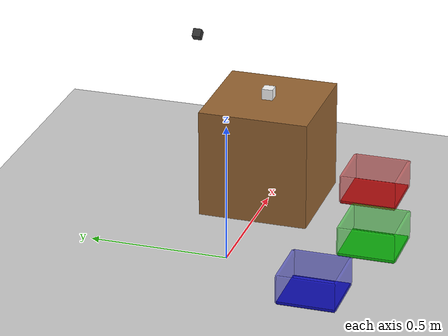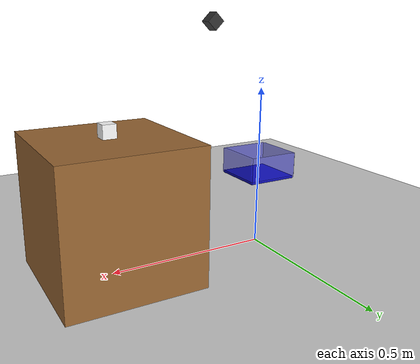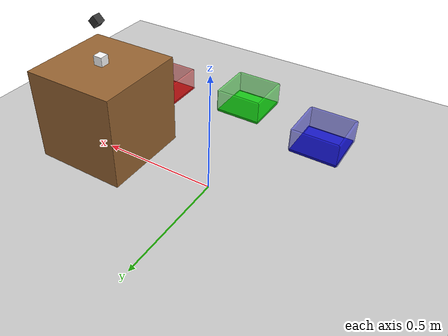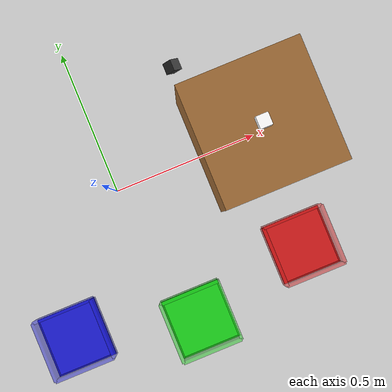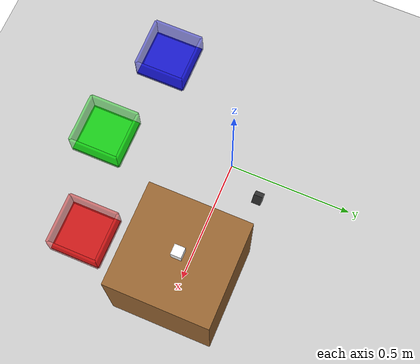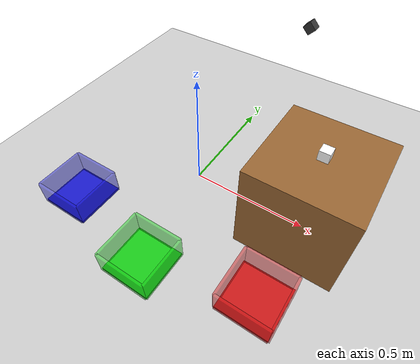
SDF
<?xml version="1.0" ?>
<sdf version="1.6">
  <world name="pick_place_world">

    <include>
      <uri>model://sun</uri>
    </include>

    <include>
      <uri>model://ground_plane</uri>
    </include>

    <!-- Pick table -->
    <model name="pick_table">
      <static>true</static>
      <pose>0.5 0.0 0.2 0 0 0</pose>
      <link name="link">
        <collision name="collision">
          <geometry><box><size>0.4 0.4 0.4</size></box></geometry>
        </collision>
        <visual name="visual">
          <geometry><box><size>0.4 0.4 0.4</size></box></geometry>
          <material>
            <ambient>0.6 0.4 0.2 1</ambient>
            <diffuse>0.6 0.4 0.2 1</diffuse>
          </material>
        </visual>
      </link>
    </model>

    <!-- Object to pick (small cube) -->
    <model name="pick_object">
      <pose>0.5 0.0 0.42 0 0 0</pose>
      <link name="link">
        <inertial>
          <mass>0.1</mass>
          <inertia>
            <ixx>0.00001</ixx><iyy>0.00001</iyy><izz>0.00001</izz>
            <ixy>0</ixy><ixz>0</ixz><iyz>0</iyz>
          </inertia>
        </inertial>
        <collision name="collision">
          <geometry><box><size>0.04 0.04 0.04</size></box></geometry>
        </collision>
        <visual name="visual">
          <geometry><box><size>0.04 0.04 0.04</size></box></geometry>
          <material>
            <ambient>1.0 1.0 1.0 1</ambient>
            <diffuse>1.0 1.0 1.0 1</diffuse>
          </material>
        </visual>
      </link>
    </model>

    <!-- Bin A (Red) -->
    <model name="bin_a">
      <static>true</static>
      <pose>0.5 -0.4 0.075 0 0 0</pose>
      <link name="link">
        <collision name="floor">
          <pose>0 0 0 0 0 0</pose>
          <geometry><box><size>0.2 0.2 0.01</size></box></geometry>
        </collision>
        <visual name="floor_vis">
          <pose>0 0 0 0 0 0</pose>
          <geometry><box><size>0.2 0.2 0.01</size></box></geometry>
          <material><ambient>0.8 0.1 0.1 1</ambient><diffuse>0.8 0.1 0.1 1</diffuse></material>
        </visual>
        <!-- Walls -->
        <visual name="wall1"><pose>0.1 0 0.05 0 0 0</pose>
          <geometry><box><size>0.01 0.2 0.1</size></box></geometry>
          <material><ambient>0.8 0.1 0.1 0.5</ambient><diffuse>0.8 0.1 0.1 0.5</diffuse></material>
        </visual>
        <visual name="wall2"><pose>-0.1 0 0.05 0 0 0</pose>
          <geometry><box><size>0.01 0.2 0.1</size></box></geometry>
          <material><ambient>0.8 0.1 0.1 0.5</ambient><diffuse>0.8 0.1 0.1 0.5</diffuse></material>
        </visual>
        <visual name="wall3"><pose>0 0.1 0.05 0 0 0</pose>
          <geometry><box><size>0.2 0.01 0.1</size></box></geometry>
          <material><ambient>0.8 0.1 0.1 0.5</ambient><diffuse>0.8 0.1 0.1 0.5</diffuse></material>
        </visual>
        <visual name="wall4"><pose>0 -0.1 0.05 0 0 0</pose>
          <geometry><box><size>0.2 0.01 0.1</size></box></geometry>
          <material><ambient>0.8 0.1 0.1 0.5</ambient><diffuse>0.8 0.1 0.1 0.5</diffuse></material>
        </visual>
        <!-- Label -->
        <visual name="label"><pose>0 0 0.001 0 0 0</pose>
          <geometry><box><size>0.05 0.05 0.001</size></box></geometry>
          <material><ambient>1 1 1 1</ambient><diffuse>1 1 1 1</diffuse></material>
        </visual>
      </link>
    </model>

    <!-- Bin B (Blue) -->
    <model name="bin_b">
      <static>true</static>
      <pose>-0.3 -0.4 0.075 0 0 0</pose>
      <link name="link">
        <collision name="floor">
          <geometry><box><size>0.2 0.2 0.01</size></box></geometry>
        </collision>
        <visual name="floor_vis">
          <geometry><box><size>0.2 0.2 0.01</size></box></geometry>
          <material><ambient>0.1 0.1 0.8 1</ambient><diffuse>0.1 0.1 0.8 1</diffuse></material>
        </visual>
        <visual name="wall1"><pose>0.1 0 0.05 0 0 0</pose>
          <geometry><box><size>0.01 0.2 0.1</size></box></geometry>
          <material><ambient>0.1 0.1 0.8 0.5</ambient><diffuse>0.1 0.1 0.8 0.5</diffuse></material>
        </visual>
        <visual name="wall2"><pose>-0.1 0 0.05 0 0 0</pose>
          <geometry><box><size>0.01 0.2 0.1</size></box></geometry>
          <material><ambient>0.1 0.1 0.8 0.5</ambient><diffuse>0.1 0.1 0.8 0.5</diffuse></material>
        </visual>
        <visual name="wall3"><pose>0 0.1 0.05 0 0 0</pose>
          <geometry><box><size>0.2 0.01 0.1</size></box></geometry>
          <material><ambient>0.1 0.1 0.8 0.5</ambient><diffuse>0.1 0.1 0.8 0.5</diffuse></material>
        </visual>
        <visual name="wall4"><pose>0 -0.1 0.05 0 0 0</pose>
          <geometry><box><size>0.2 0.01 0.1</size></box></geometry>
          <material><ambient>0.1 0.1 0.8 0.5</ambient><diffuse>0.1 0.1 0.8 0.5</diffuse></material>
        </visual>
      </link>
    </model>

    <!-- Bin C (Green) -->
    <model name="bin_c">
      <static>true</static>
      <pose>0.1 -0.5 0.075 0 0 0</pose>
      <link name="link">
        <collision name="floor">
          <geometry><box><size>0.2 0.2 0.01</size></box></geometry>
        </collision>
        <visual name="floor_vis">
          <geometry><box><size>0.2 0.2 0.01</size></box></geometry>
          <material><ambient>0.1 0.8 0.1 1</ambient><diffuse>0.1 0.8 0.1 1</diffuse></material>
        </visual>
        <visual name="wall1"><pose>0.1 0 0.05 0 0 0</pose>
          <geometry><box><size>0.01 0.2 0.1</size></box></geometry>
          <material><ambient>0.1 0.8 0.1 0.5</ambient><diffuse>0.1 0.8 0.1 0.5</diffuse></material>
        </visual>
        <visual name="wall2"><pose>-0.1 0 0.05 0 0 0</pose>
          <geometry><box><size>0.01 0.2 0.1</size></box></geometry>
          <material><ambient>0.1 0.8 0.1 0.5</ambient><diffuse>0.1 0.8 0.1 0.5</diffuse></material>
        </visual>
        <visual name="wall3"><pose>0 0.1 0.05 0 0 0</pose>
          <geometry><box><size>0.2 0.01 0.1</size></box></geometry>
          <material><ambient>0.1 0.8 0.1 0.5</ambient><diffuse>0.1 0.8 0.1 0.5</diffuse></material>
        </visual>
        <visual name="wall4"><pose>0 -0.1 0.05 0 0 0</pose>
          <geometry><box><size>0.2 0.01 0.1</size></box></geometry>
          <material><ambient>0.1 0.8 0.1 0.5</ambient><diffuse>0.1 0.8 0.1 0.5</diffuse></material>
        </visual>
      </link>
    </model>

    <!-- Camera (fixed, pointing at scan area) -->
    <model name="scan_camera">
      <static>true</static>
      <pose>0.3 0.2 0.7 0 0.785 0</pose>
      <link name="link">
        <visual name="visual">
          <geometry><box><size>0.03 0.03 0.03</size></box></geometry>
          <material><ambient>0.2 0.2 0.2 1</ambient><diffuse>0.2 0.2 0.2 1</diffuse></material>
        </visual>
        <sensor type="camera" name="scan_camera">
          <update_rate>10.0</update_rate>
          <camera name="head">
            <horizontal_fov>1.047</horizontal_fov>
            <image>
              <width>640</width>
              <height>480</height>
              <format>R8G8B8</format>
            </image>
            <clip><near>0.05</near><far>5.0</far></clip>
          </camera>
          <plugin name="camera_controller" filename="libgazebo_ros_camera.so">
            <ros>
              <remapping>image_raw:=camera/image_raw</remapping>
              <remapping>camera_info:=camera/camera_info</remapping>
            </ros>
            <camera_name>scan_camera</camera_name>
            <frame_name>camera_link</frame_name>
          </plugin>
        </sensor>
      </link>
    </model>

  </world>
</sdf>
